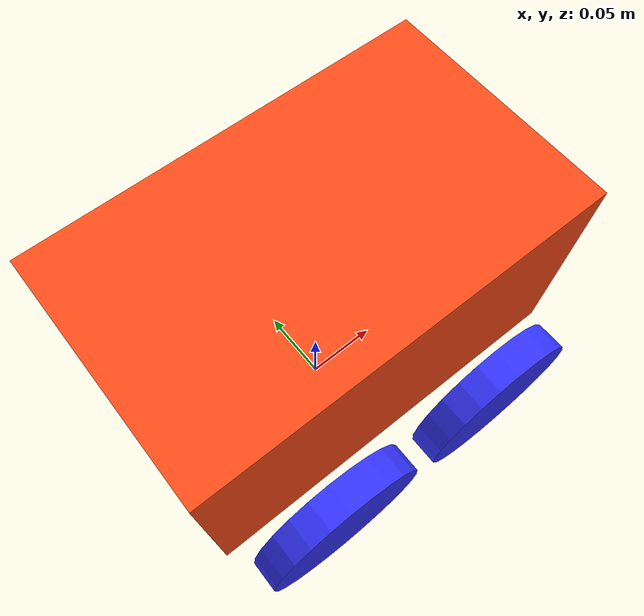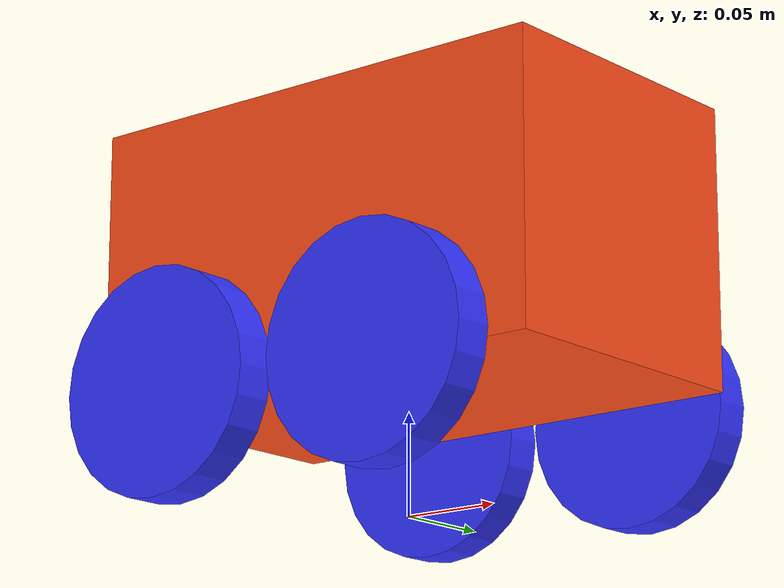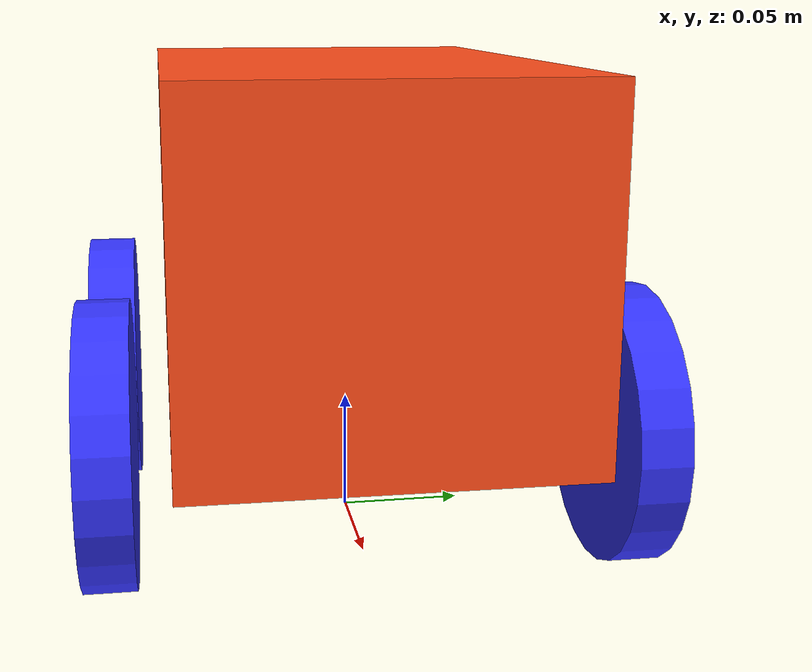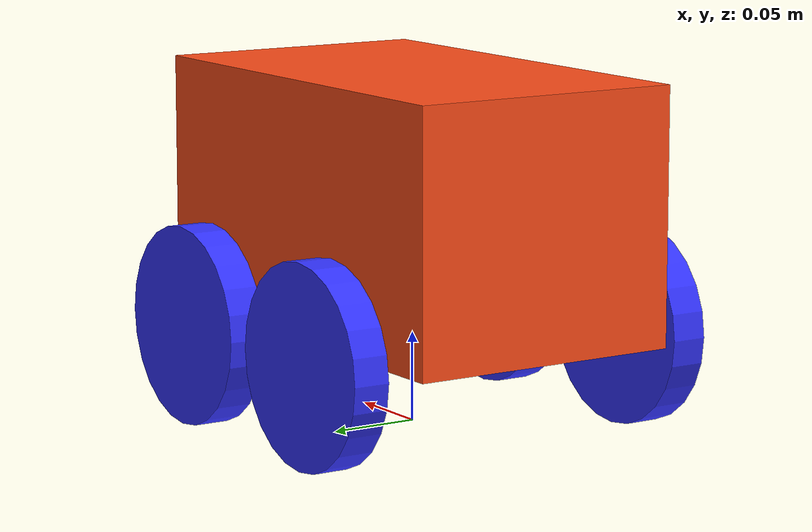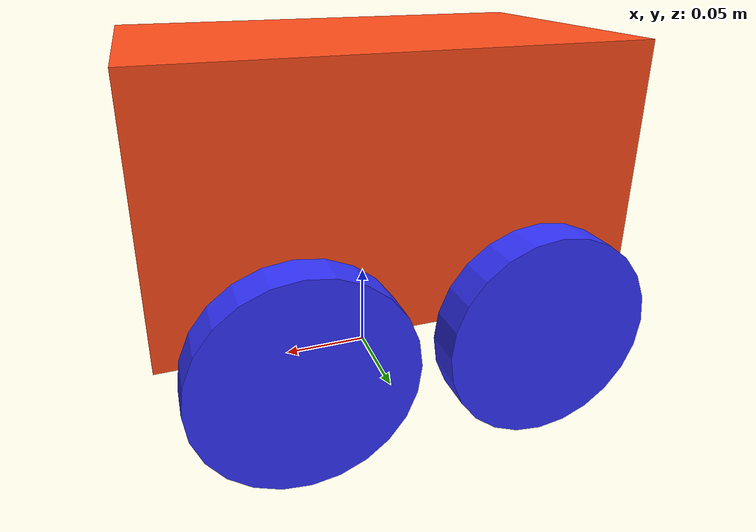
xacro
<?xml version="1.0"?>

<robot xmlns:xacro="http://www.ros.org/wiki/xacro"  name="asitlorbot8">

    <xacro:arg name="is_sim" default="false"/>

    <xacro:include filename="inertial_macros.xacro"/>

    <material name="white">
        <color rgba="1 1 1 1" />
    </material>

    <material name="orange">
        <color rgba="1 0.3 0.1 1"/>
    </material>

    <material name="blue">
        <color rgba="0.2 0.2 1 1"/>
    </material>

    <material name="black">
        <color rgba="0 0 0 1"/>
    </material>

    <material name="red">
        <color rgba="1 0 0 1"/>
    </material>

    <!-- BASE LINK -->

    <link name="base_footprint">

    </link>

    <!-- BASE_FOOTPRINT LINK -->

    <joint name="base_footprint_joint" type="fixed">
        <parent link="base_footprint"/>
        <child link="base_link"/>
        <origin xyz="0 0 0.055" rpy="0 0 0"/>
    </joint>

    <link name="base_link">

    </link>

    <!-- CHASSIS LINK -->

    <joint name="chassis_joint" type="fixed">
        <parent link="base_link"/>
        <child link="chassis"/>
        <origin xyz="-0.1275 0 0"/>
    </joint>

    <link name="chassis">
        <visual>
            <origin xyz="0.1275 0 0.07"/>
            <geometry>
                <box size="0.255 0.153 0.14"/>
            </geometry>
            <material name="orange"/>
        </visual>
        <!-- COLLISION TAG DEFINES VOLUME OF CERTAIN LINK -->
        <collision>
            <origin xyz="0.1275 0 0.07"/>
            <geometry>
                <box size="0.255 0.153 0.14"/>
            </geometry>
        </collision>
        <!-- INERTIA TAG :RESISTANCE TO MOTION -->
        <xacro:inertial_box mass="0.5" x="0.255" y="0.153" z="0.14">
            <origin xyz="0.1275 0 0.07" rpy="0 0 0"/>
        </xacro:inertial_box>
    </link>
    <gazebo reference="chassis">
        <material>Gazebo/Orange</material>
    </gazebo>

    <!-- LEFT BACK WHEEL LINK -->

    <joint name="left_back_wheel_hinge" type="continuous">
        <parent link="base_link"/>
        <child link="left_back_wheel"/>
        <origin xyz="0.0625 0.1 0" rpy="-${pi/2} 0 0" />
        <axis xyz="0 0 1"/>
        <limit effort="10000.0" velocity="20.0" />
        <dynamics damping="0.0"/>
        <joint_properties friction="0.0" />
    </joint>

    <link name="left_back_wheel">
        <visual>
            <geometry>
                <cylinder radius="0.055" length="0.02"/>
            </geometry>
            <material name="blue"/>
        </visual>
        <collision>
            <geometry>
                <sphere radius="0.055"/>
            </geometry>
            <surface>
                <friction>
                    <ode>
                        <mu>1.0</mu>          <!-- Moderate grip in the primary direction -->
                        <mu2>1.0</mu2>        <!-- Moderate grip in the secondary direction -->
                        <fdir1>1 0 0</fdir1>  <!-- Aligns primary friction with the x-axis (forward direction) -->
                        <slip1>0.0</slip1>   <!-- Small slip value for slight sliding capability -->
                        <slip2>0.0</slip2>   <!-- Small slip value for slight sliding capability -->
                    </ode>
                </friction>
            </surface>
        </collision>
        <xacro:inertial_cylinder mass="0.05" length="0.02" radius="0.055">
            <origin xyz="0 0 0" rpy="0 0 0"/>
        </xacro:inertial_cylinder>

    </link>
    <gazebo reference="left_back_wheel">
        <material>Gazebo/Blue</material>
        <mu1>1.0</mu1>
        <mu2>1.0</mu2>
        <kp>1000000000000.0</kp>
        <kd>10.0</kd>
        <minDepth>0.0001</minDepth>
        <maxVel>0.0</maxVel>
        <fdir1>1 0 0</fdir1>
        <slip1>0.0</slip1>   <!-- Small slip value for slight sliding capability -->
        <slip2>0.0</slip2>
    </gazebo>

    <!-- LEFT FRONT WHEEL LINK -->

    <joint name="left_front_wheel_hinge" type="continuous">
        <parent link="base_link"/>
        <child link="left_front_wheel"/>
        <origin xyz="-0.0625 0.1 0" rpy="-${pi/2} 0 0" />
        <axis xyz="0 0 1"/>
        <limit effort="10000.0" velocity="20.0" />
        <dynamics damping="0.0"/>
        <joint_properties friction="0.0" />
    </joint>

    <link name="left_front_wheel">
        <visual>
            <geometry>
                <cylinder radius="0.055" length="0.02"/>
            </geometry>
            <material name="blue"/>
        </visual>
        <collision>
            <geometry>
                <sphere radius="0.055"/>
            </geometry>
            <surface>
                <friction>
                    <ode>
                        <mu>1.0</mu>          <!-- Moderate grip in the primary direction -->
                        <mu2>1.0</mu2>        <!-- Moderate grip in the secondary direction -->
                        <fdir1>1 0 0</fdir1>  <!-- Aligns primary friction with the x-axis (forward direction) -->
                        <slip1>0.0</slip1>   <!-- Small slip value for slight sliding capability -->
                        <slip2>0.0</slip2>   <!-- Small slip value for slight sliding capability -->
                    </ode>
                </friction>
            </surface>
        </collision>
        <xacro:inertial_cylinder mass="0.05" length="0.02" radius="0.055">
            <origin xyz="0 0 0" rpy="0 0 0"/>
        </xacro:inertial_cylinder>
    </link>
    <gazebo reference="left_front_wheel">
        <material>Gazebo/Blue</material>
        <mu1>1.0</mu1>
        <mu2>1.0</mu2>
        <kp>1000000000000.0</kp>
        <kd>10.0</kd>
        <minDepth>0.0001</minDepth>
        <maxVel>0.0</maxVel>
        <fdir1>1 0 0</fdir1>
        <slip1>0.0</slip1>   <!-- Small slip value for slight sliding capability -->
        <slip2>0.0</slip2>
    </gazebo>

    <!-- RIGHT BACK WHEEL -->

    <joint name="right_back_wheel_hinge" type="continuous">
        <parent link="base_link"/>
        <child link="right_back_wheel"/>
        <origin xyz="0.0625 -0.1 0" rpy="${pi/2} 0 0" />
        <axis xyz="0 0 -1"/>
        <limit effort="10000.0" velocity="20.0" />
        <dynamics damping="0.0"/>
        <joint_properties friction="0.0" />
    </joint>

    <link name="right_back_wheel">
        <visual>
            <geometry>
                <cylinder radius="0.055" length="0.02"/>
            </geometry>
            <material name="blue"/>
        </visual>
        <collision>
            <geometry>
                <sphere radius="0.055"/>
            </geometry>
            <surface>
                <friction>
                    <ode>
                        <mu>1.0</mu>          <!-- Moderate grip in the primary direction -->
                        <mu2>1.0</mu2>        <!-- Moderate grip in the secondary direction -->
                        <fdir1>1 0 0</fdir1>  <!-- Aligns primary friction with the x-axis (forward direction) -->
                        <slip1>0.0</slip1>   <!-- Small slip value for slight sliding capability -->
                        <slip2>0.0</slip2>   <!-- Small slip value for slight sliding capability -->
                    </ode>
                </friction>
            </surface>
        </collision>
        <xacro:inertial_cylinder mass="0.05" length="0.02" radius="0.055">
            <origin xyz="0 0 0" rpy="0 0 0"/>
        </xacro:inertial_cylinder>
    </link>
    <gazebo reference="right_back_wheel">
        <material>Gazebo/Blue</material>
        <mu1>1.0</mu1>
        <mu2>1.0</mu2>
        <kp>1000000000000.0</kp>
        <kd>10.0</kd>
        <minDepth>0.0001</minDepth>
        <maxVel>0.0</maxVel>
        <fdir1>1 0 0</fdir1>
        <slip1>0.0</slip1>   <!-- Small slip value for slight sliding capability -->
        <slip2>0.0</slip2>
    </gazebo>

    <!-- RIGHT FRONT WHEEL -->

    <joint name="right_front_wheel_hinge" type="continuous">
        <parent link="base_link"/>
        <child link="right_front_wheel"/>
        <origin xyz="-0.0625 -0.1 0" rpy="${pi/2} 0 0" />
        <axis xyz="0 0 -1"/>
        <limit effort="10000.0" velocity="20.0" />
        <dynamics damping="0.0"/>
        <joint_properties friction="0.0" />
    </joint>

    <link name="right_front_wheel">
        <visual>
            <geometry>
                <cylinder radius="0.055" length="0.02"/>
            </geometry>
            <material name="blue"/>
        </visual>
        <collision>
            <geometry>
                <sphere radius="0.055"/>
            </geometry>
            <surface>
                <friction>
                    <ode>
                        <mu>1.0</mu>          <!-- Moderate grip in the primary direction -->
                        <mu2>1.0</mu2>        <!-- Moderate grip in the secondary direction -->
                        <fdir1>1 0 0</fdir1>  <!-- Aligns primary friction with the x-axis (forward direction) -->
                        <slip1>0.0</slip1>   <!-- Small slip value for slight sliding capability -->
                        <slip2>0.0</slip2>   <!-- Small slip value for slight sliding capability -->
                    </ode>
                </friction>
            </surface>
        </collision>
        <xacro:inertial_cylinder mass="0.05" length="0.02" radius="0.055">
            <origin xyz="0 0 0" rpy="0 0 0"/>
        </xacro:inertial_cylinder>
    </link>
    <gazebo reference="right_front_wheel">
        <material>Gazebo/Blue</material>
        <mu1>1.0</mu1>
        <mu2>1.0</mu2>
        <kp>1000000000000.0</kp>
        <kd>10.0</kd>
        <minDepth>0.0001</minDepth>
        <maxVel>0.0</maxVel>
        <fdir1>1 0 0</fdir1>
        <slip1>0.0</slip1>   <!-- Small slip value for slight sliding capability -->
        <slip2>0.0</slip2>
    </gazebo>

</robot>
